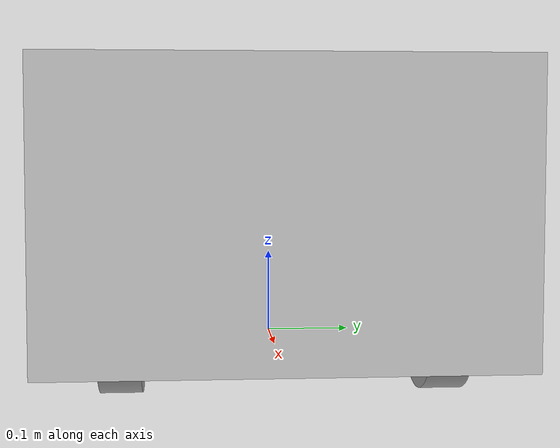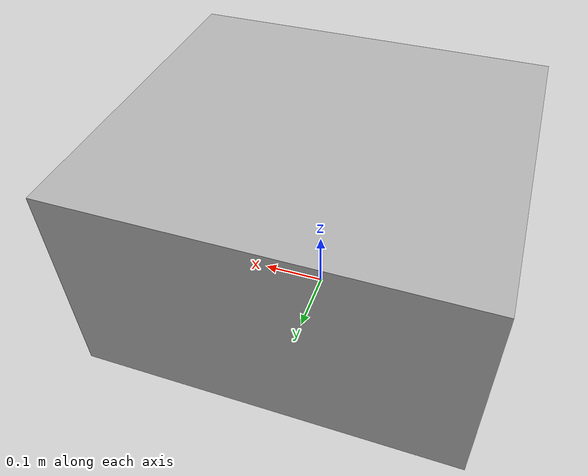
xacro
<?xml version="1.0" ?>
<robot name="synkar_robot" xmlns:xacro="http://www.ros.org/wiki/xacro">

<xacro:include filename="$(find synkar_robot_description)/urdf/materials.xacro" />
<xacro:include filename="$(find synkar_robot_description)/urdf/synkar_robot.trans" />
<xacro:include filename="$(find synkar_robot_description)/urdf/synkar_robot.gazebo" />
<link name="base_link">
  <inertial>
    <origin xyz="-1.752782325215843e-05 2.5351213352424762e-05 0.18360480308889404" rpy="0 0 0"/>
    <mass value="591.0521687791345"/>
    <inertia ixx="15.442645" iyy="22.256446" izz="27.027958" ixy="-0.0" iyz="-0.0" ixz="0.000618"/>
  </inertial>
  <visual>
    <origin xyz="0 0 0" rpy="0 0 0"/>
    <geometry>
      <mesh filename="package://synkar_robot_description/meshes/base_link.stl" scale="0.001 0.001 0.001"/>
    </geometry>
    <material name="silver"/>
  </visual>
  <collision>
    <origin xyz="0 0 0" rpy="0 0 0"/>
    <geometry>
      <mesh filename="package://synkar_robot_description/meshes/base_link.stl" scale="0.001 0.001 0.001"/>
    </geometry>
  </collision>
</link>

<link name="roda_v1__1__1">
  <inertial>
    <origin xyz="-3.5121335326127046e-07 -0.022499648786645093 0.0" rpy="0 0 0"/>
    <mass value="7.553355760718545"/>
    <inertia ixx="0.014127" iyy="0.025705" izz="0.014127" ixy="0.0" iyz="0.0" ixz="0.0"/>
  </inertial>
  <visual>
    <origin xyz="0.160025 0.149975 -0.05" rpy="0 0 0"/>
    <geometry>
      <mesh filename="package://synkar_robot_description/meshes/roda_v1__1__1.stl" scale="0.001 0.001 0.001"/>
    </geometry>
    <material name="silver"/>
  </visual>
  <collision>
    <origin xyz="0.160025 0.149975 -0.05" rpy="0 0 0"/>
    <geometry>
      <mesh filename="package://synkar_robot_description/meshes/roda_v1__1__1.stl" scale="0.001 0.001 0.001"/>
    </geometry>
  </collision>
</link>

<link name="roda_v1_1">
  <inertial>
    <origin xyz="-3.5121335281718125e-07 -0.02249964878664526 0.0" rpy="0 0 0"/>
    <mass value="7.553355760718545"/>
    <inertia ixx="0.014127" iyy="0.025705" izz="0.014127" ixy="0.0" iyz="0.0" ixz="0.0"/>
  </inertial>
  <visual>
    <origin xyz="-0.189975 0.149975 -0.05" rpy="0 0 0"/>
    <geometry>
      <mesh filename="package://synkar_robot_description/meshes/roda_v1_1.stl" scale="0.001 0.001 0.001"/>
    </geometry>
    <material name="silver"/>
  </visual>
  <collision>
    <origin xyz="-0.189975 0.149975 -0.05" rpy="0 0 0"/>
    <geometry>
      <mesh filename="package://synkar_robot_description/meshes/roda_v1_1.stl" scale="0.001 0.001 0.001"/>
    </geometry>
  </collision>
</link>

<link name="roda_v1__2__1">
  <inertial>
    <origin xyz="-3.5121335281718125e-07 0.02250035121335192 0.0" rpy="0 0 0"/>
    <mass value="7.553355760718545"/>
    <inertia ixx="0.014127" iyy="0.025705" izz="0.014127" ixy="-0.0" iyz="-0.0" ixz="0.0"/>
  </inertial>
  <visual>
    <origin xyz="-0.189975 -0.150025 -0.05" rpy="0 0 0"/>
    <geometry>
      <mesh filename="package://synkar_robot_description/meshes/roda_v1__2__1.stl" scale="0.001 0.001 0.001"/>
    </geometry>
    <material name="silver"/>
  </visual>
  <collision>
    <origin xyz="-0.189975 -0.150025 -0.05" rpy="0 0 0"/>
    <geometry>
      <mesh filename="package://synkar_robot_description/meshes/roda_v1__2__1.stl" scale="0.001 0.001 0.001"/>
    </geometry>
  </collision>
</link>

<link name="roda_v1__3__1">
  <inertial>
    <origin xyz="-3.512133532335149e-07 0.022500351213351838 0.0" rpy="0 0 0"/>
    <mass value="7.553355760718545"/>
    <inertia ixx="0.014127" iyy="0.025705" izz="0.014127" ixy="0.0" iyz="0.0" ixz="-0.0"/>
  </inertial>
  <visual>
    <origin xyz="0.160025 -0.150025 -0.05" rpy="0 0 0"/>
    <geometry>
      <mesh filename="package://synkar_robot_description/meshes/roda_v1__3__1.stl" scale="0.001 0.001 0.001"/>
    </geometry>
    <material name="silver"/>
  </visual>
  <collision>
    <origin xyz="0.160025 -0.150025 -0.05" rpy="0 0 0"/>
    <geometry>
      <mesh filename="package://synkar_robot_description/meshes/roda_v1__3__1.stl" scale="0.001 0.001 0.001"/>
    </geometry>
  </collision>
</link>

<joint name="Revolucionar_1" type="continuous">
  <origin xyz="-0.160025 -0.149975 0.05" rpy="0 0 0"/>
  <parent link="base_link"/>
  <child link="roda_v1__1__1"/>
  <axis xyz="0.0 1.0 0.0"/>
</joint>

<joint name="Revolucionar_2" type="continuous">
  <origin xyz="0.189975 -0.149975 0.05" rpy="0 0 0"/>
  <parent link="base_link"/>
  <child link="roda_v1_1"/>
  <axis xyz="0.0 1.0 0.0"/>
</joint>

<joint name="Revolucionar_3" type="continuous">
  <origin xyz="0.189975 0.150025 0.05" rpy="0 0 0"/>
  <parent link="base_link"/>
  <child link="roda_v1__2__1"/>
  <axis xyz="-0.0 1.0 0.0"/>
</joint>

<joint name="Revolucionar_4" type="continuous">
  <origin xyz="-0.160025 0.150025 0.05" rpy="0 0 0"/>
  <parent link="base_link"/>
  <child link="roda_v1__3__1"/>
  <axis xyz="-0.0 1.0 0.0"/>
</joint>

  <!-- ========== T265 (mono) ========== -->
  <link name="camera_t265_link"/>
  <joint name="camera_t265_joint" type="fixed">
    <parent link="base_link"/>
    <child  link="camera_t265_link"/>
    <origin xyz="0.290 0 0.2425" rpy="0 0 0"/>
  </joint>

  <gazebo reference="camera_t265_link">
    <sensor name="t265_cam" type="camera">
      <camera name="mono">
        <horizontal_fov>1.047</horizontal_fov>
        <image>
          <width>480</width><height>480</height><format>R8G8B8</format>
        </image>
        <clip><near>0.05</near><far>20.0</far></clip>
      </camera>
      <plugin name="gazebo_ros_camera" filename="libgazebo_ros_camera.so">
        <frameName>camera_t265_link</frameName>
        <imageTopicName>/camera/t265/image_raw</imageTopicName>
        <cameraInfoTopicName>/camera/t265/camera_info</cameraInfoTopicName>
        <updateRate>30.0</updateRate>
      </plugin>
    </sensor>
  </gazebo>

  <!-- ========== D435i (RGB + Depth) ========== -->
  <link name="camera_d435i_link"/>
  <joint name="camera_d435i_joint" type="fixed">
    <parent link="base_link"/>
    <child  link="camera_d435i_link"/>
    <origin xyz="0.290 0 0.2725" rpy="0 0 0"/>
  </joint>

  <!-- RGB -->
  <gazebo reference="camera_d435i_link">
    <sensor name="d435i_rgb" type="camera">
      <camera name="rgb">
        <horizontal_fov>1.047</horizontal_fov>
        <image>
          <width>640</width><height>480</height><format>R8G8B8</format>
        </image>
        <clip><near>0.1</near><far>10.0</far></clip>
      </camera>
      <plugin name="gazebo_ros_camera" filename="libgazebo_ros_camera.so">
        <frameName>camera_d435i_link</frameName>
        <imageTopicName>/camera/d435i/image_raw</imageTopicName>
        <cameraInfoTopicName>/camera/d435i/camera_info</cameraInfoTopicName>
        <updateRate>30.0</updateRate>
      </plugin>
    </sensor>
  </gazebo>

  <!-- Depth + PointCloud -->
  <gazebo reference="camera_d435i_link">
    <sensor name="d435i_depth" type="depth">
      <camera name="depth">
        <horizontal_fov>1.047</horizontal_fov>
        <image>
          <width>640</width><height>480</height><format>R8G8B8</format>
        </image>
        <clip><near>0.1</near><far>10.0</far></clip>
      </camera>
      <plugin name="gazebo_ros_depth_camera" filename="libgazebo_ros_depth_camera.so">
        <frameName>camera_d435i_link</frameName>
        <depthImageTopicName>/camera/d435i/image_raw</depthImageTopicName>
        <cameraInfoTopicName>/camera/d435i/camera_info</cameraInfoTopicName>
        <pointCloudTopicName>/camera/d435i/points</pointCloudTopicName>
        <updateRate>30.0</updateRate>
      </plugin>
    </sensor>
  </gazebo>

</robot>

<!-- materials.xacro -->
<robot name="synkar_robot" xmlns:xacro="http://www.ros.org/wiki/xacro" >

<material name="silver">
  <color rgba="0.700 0.700 0.700 1.000"/>
</material>

</robot>

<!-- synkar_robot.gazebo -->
<robot name="synkar_robot" xmlns:xacro="http://www.ros.org/wiki/xacro" >

<xacro:property name="body_color" value="Gazebo/Silver" />

<gazebo>
  <plugin name="control" filename="libgazebo_ros_control.so"/>
</gazebo>

<gazebo>
  <plugin name="gazebo_ros_diff_drive" filename="libgazebo_ros_diff_drive.so">
    <robotNamespace>/</robotNamespace>
    <leftJoint>Revolucionar_2</leftJoint>
    <rightJoint>Revolucionar_3</rightJoint>
    <wheelSeparation>0.345</wheelSeparation>
    <wheelDiameter>0.165</wheelDiameter>
    <commandTopic>cmd_vel</commandTopic>
    <odometryTopic>odom</odometryTopic>
    <publishWheelTF>true</publishWheelTF>
    <publishOdomTF>true</publishOdomTF>
  </plugin>
</gazebo>

<gazebo reference="base_link">
  <material>${body_color}</material>
  <mu1>0.2</mu1>
  <mu2>0.2</mu2>
  <selfCollide>true</selfCollide>
  <gravity>true</gravity>
</gazebo>

<gazebo reference="roda_v1_1">
  <material>${body_color}</material>
  <mu1>0.2</mu1>
  <mu2>0.2</mu2>
  <selfCollide>true</selfCollide>
</gazebo>

<gazebo reference="roda_v1__1__1">
  <material>${body_color}</material>
  <mu1>1e-3</mu1>
  <mu2>1e-3</mu2>
  <selfCollide>true</selfCollide>
</gazebo>

<gazebo reference="roda_v1__2__1">
  <material>${body_color}</material>
  <mu1>0.2</mu1>
  <mu2>0.2</mu2>
  <selfCollide>true</selfCollide>
</gazebo>

<gazebo reference="roda_v1__3__1">
  <material>${body_color}</material>
  <mu1>1e-3</mu1>
  <mu2>1e-3</mu2>
  <selfCollide>true</selfCollide>
</gazebo>

</robot>
